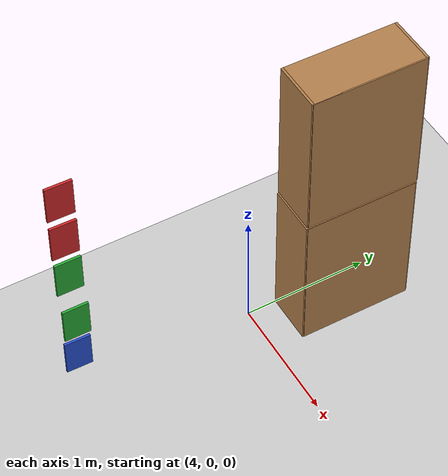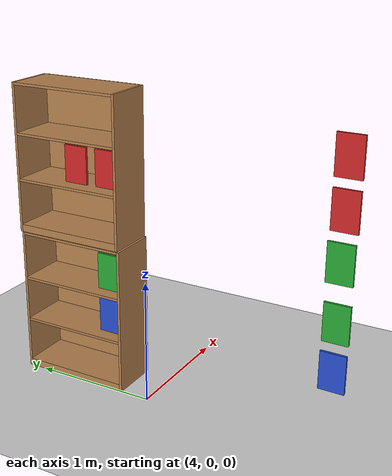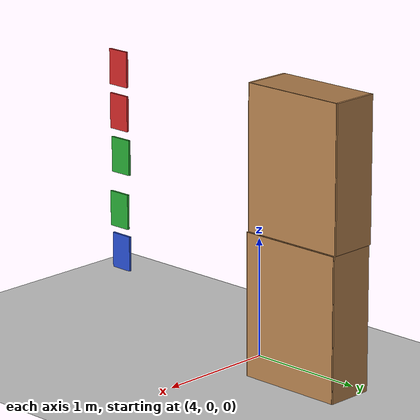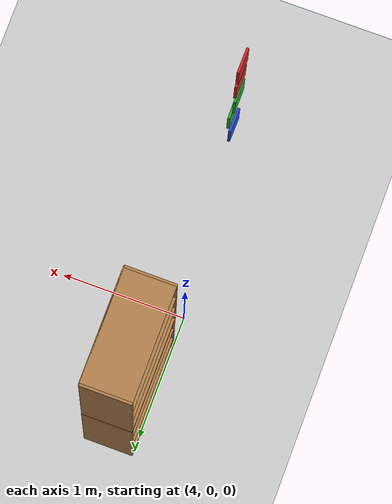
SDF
<sdf version="1.6">
 <world name="default">
  <model name="ground_plane">
   <static>1</static>
   <link name="link">
    <collision name="collision">
     <geometry><plane><normal>0 0 1</normal><size>100 100</size></plane></geometry>
     <surface><friction><ode><mu>100</mu><mu2>50</mu2></ode></friction></surface>
    </collision>
    <visual name="visual">
     <cast_shadows>0</cast_shadows>
     <geometry><plane><normal>0 0 1</normal><size>100 100</size></plane></geometry>
     <material>
      <script><uri>file://media/materials/scripts/gazebo.material</uri><name>Gazebo/Grey</name></script>
     </material>
    </visual>
   </link>
  </model>
  <model name="bookshelf_4_clone_1">
   <static>1</static>
   <link name="link">
    <inertial><mass>1</mass></inertial>
    <collision name="back">
     <pose>0 0.005 0.6 0 -0 0</pose>
     <geometry><box><size>0.9 0.01 1.2</size></box></geometry>
    </collision>
    <visual name="visual1">
     <pose>0 0.005 0.6 0 -0 0</pose>
     <geometry><box><size>0.9 0.01 1.2</size></box></geometry>
     <material>
      <script><uri>file://media/materials/scripts/gazebo.material</uri><name>Gazebo/Wood</name></script>
     </material>
    </visual>
    <collision name="left_side">
     <pose>0.45 -0.195 0.6 0 -0 0</pose>
     <geometry><box><size>0.02 0.4 1.2</size></box></geometry>
    </collision>
    <visual name="visual2">
     <pose>0.45 -0.195 0.6 0 -0 0</pose>
     <geometry><box><size>0.02 0.4 1.2</size></box></geometry>
     <material>
      <script><uri>file://media/materials/scripts/gazebo.material</uri><name>Gazebo/Wood</name></script>
     </material>
    </visual>
    <collision name="right_side">
     <pose>-0.45 -0.195 0.6 0 -0 0</pose>
     <geometry><box><size>0.02 0.4 1.2</size></box></geometry>
    </collision>
    <visual name="visual3">
     <pose>-0.45 -0.195 0.6 0 -0 0</pose>
     <geometry><box><size>0.02 0.4 1.2</size></box></geometry>
     <material>
      <script><uri>file://media/materials/scripts/gazebo.material</uri><name>Gazebo/Wood</name></script>
     </material>
    </visual>
    <collision name="bottom">
     <pose>0 -0.195 0.03 0 -0 0</pose>
     <geometry><box><size>0.88 0.4 0.06</size></box></geometry>
    </collision>
    <visual name="visual4">
     <pose>0 -0.195 0.03 0 -0 0</pose>
     <geometry><box><size>0.88 0.4 0.06</size></box></geometry>
     <material>
      <script><uri>file://media/materials/scripts/gazebo.material</uri><name>Gazebo/Wood</name></script>
     </material>
    </visual>
    <collision name="top">
     <pose>0 -0.195 1.19 0 -0 0</pose>
     <geometry><box><size>0.88 0.4 0.02</size></box></geometry>
    </collision>
    <visual name="visual5">
     <pose>0 -0.195 1.19 0 -0 0</pose>
     <geometry><box><size>0.88 0.4 0.02</size></box></geometry>
     <material>
      <script><uri>file://media/materials/scripts/gazebo.material</uri><name>Gazebo/Wood</name></script>
     </material>
    </visual>
    <collision name="low_shelf">
     <pose>0 -0.195 0.43 0 -0 0</pose>
     <geometry><box><size>0.88 0.4 0.02</size></box></geometry>
    </collision>
    <visual name="visual6">
     <pose>0 -0.195 0.43 0 -0 0</pose>
     <geometry><box><size>0.88 0.4 0.02</size></box></geometry>
     <material>
      <script><uri>file://media/materials/scripts/gazebo.material</uri><name>Gazebo/Wood</name></script>
     </material>
    </visual>
    <collision name="high_shelf">
     <pose>0 -0.195 0.8 0 -0 0</pose>
     <geometry><box><size>0.88 0.4 0.02</size></box></geometry>
    </collision>
    <visual name="visual7">
     <pose>0 -0.195 0.8 0 -0 0</pose>
     <geometry><box><size>0.88 0.4 0.02</size></box></geometry>
     <material>
      <script><uri>file://media/materials/scripts/gazebo.material</uri><name>Gazebo/Wood</name></script>
     </material>
    </visual>
   </link>
   <pose>4.39312 0.69592 0 0 0 -1.5727</pose>
  </model>
  <model name="bookshelf_4_clone_1_clone_clone_0">
   <static>1</static>
   <link name="link">
    <inertial><mass>1</mass></inertial>
    <collision name="back">
     <pose>0 0.005 0.6 0 -0 0</pose>
     <geometry><box><size>0.9 0.01 1.2</size></box></geometry>
    </collision>
    <visual name="visual1">
     <pose>0 0.005 0.6 0 -0 0</pose>
     <geometry><box><size>0.9 0.01 1.2</size></box></geometry>
     <material>
      <script><uri>file://media/materials/scripts/gazebo.material</uri><name>Gazebo/Wood</name></script>
     </material>
    </visual>
    <collision name="left_side">
     <pose>0.45 -0.195 0.6 0 -0 0</pose>
     <geometry><box><size>0.02 0.4 1.2</size></box></geometry>
    </collision>
    <visual name="visual2">
     <pose>0.45 -0.195 0.6 0 -0 0</pose>
     <geometry><box><size>0.02 0.4 1.2</size></box></geometry>
     <material>
      <script><uri>file://media/materials/scripts/gazebo.material</uri><name>Gazebo/Wood</name></script>
     </material>
    </visual>
    <collision name="right_side">
     <pose>-0.45 -0.195 0.6 0 -0 0</pose>
     <geometry><box><size>0.02 0.4 1.2</size></box></geometry>
    </collision>
    <visual name="visual3">
     <pose>-0.45 -0.195 0.6 0 -0 0</pose>
     <geometry><box><size>0.02 0.4 1.2</size></box></geometry>
     <material>
      <script><uri>file://media/materials/scripts/gazebo.material</uri><name>Gazebo/Wood</name></script>
     </material>
    </visual>
    <collision name="bottom">
     <pose>0 -0.195 0.03 0 -0 0</pose>
     <geometry><box><size>0.88 0.4 0.06</size></box></geometry>
    </collision>
    <visual name="visual4">
     <pose>0 -0.195 0.03 0 -0 0</pose>
     <geometry><box><size>0.88 0.4 0.06</size></box></geometry>
     <material>
      <script><uri>file://media/materials/scripts/gazebo.material</uri><name>Gazebo/Wood</name></script>
     </material>
    </visual>
    <collision name="top">
     <pose>0 -0.195 1.19 0 -0 0</pose>
     <geometry><box><size>0.88 0.4 0.02</size></box></geometry>
    </collision>
    <visual name="visual5">
     <pose>0 -0.195 1.19 0 -0 0</pose>
     <geometry><box><size>0.88 0.4 0.02</size></box></geometry>
     <material>
      <script><uri>file://media/materials/scripts/gazebo.material</uri><name>Gazebo/Wood</name></script>
     </material>
    </visual>
    <collision name="low_shelf">
     <pose>0 -0.195 0.43 0 -0 0</pose>
     <geometry><box><size>0.88 0.4 0.02</size></box></geometry>
    </collision>
    <visual name="visual6">
     <pose>0 -0.195 0.43 0 -0 0</pose>
     <geometry><box><size>0.88 0.4 0.02</size></box></geometry>
     <material>
      <script><uri>file://media/materials/scripts/gazebo.material</uri><name>Gazebo/Wood</name></script>
     </material>
    </visual>
    <collision name="high_shelf">
     <pose>0 -0.195 0.8 0 -0 0</pose>
     <geometry><box><size>0.88 0.4 0.02</size></box></geometry>
    </collision>
    <visual name="visual7">
     <pose>0 -0.195 0.8 0 -0 0</pose>
     <geometry><box><size>0.88 0.4 0.02</size></box></geometry>
     <material>
      <script><uri>file://media/materials/scripts/gazebo.material</uri><name>Gazebo/Wood</name></script>
     </material>
    </visual>
   </link>
   <pose>4.38615 0.705306 1.20741 0 0 -1.5727</pose>
  </model>
  <model name="bluecube_0_clone_clone_10_clone_clone_21_clone_clone_6">
   <static>1</static>
   <link name="link">
    <pose>0 0 0.21 0 -0 0</pose>
    <collision name="collision"><geometry><box><size>0.2 0.02 0.3</size></box></geometry></collision>
    <visual name="visual">
     <geometry><box><size>0.2 0.02 0.3</size></box></geometry>
     <material>
      <script><uri>file://media/materials/scripts/gazebo.material</uri><name>Gazebo/Blue</name></script>
     </material>
    </visual>
   </link>
   <pose>4.12204 0.403131 0.38097 0 -0 1.5507</pose>
  </model>
  <model name="bluecube_0_clone_clone_10_clone_clone_21_clone_clone_7">
   <static>1</static>
   <link name="link">
    <pose>0 0 0.21 0 -0 0</pose>
    <collision name="collision"><geometry><box><size>0.2 0.02 0.3</size></box></geometry></collision>
    <visual name="visual">
     <geometry><box><size>0.2 0.02 0.3</size></box></geometry>
     <material>
      <script><uri>file://media/materials/scripts/gazebo.material</uri><name>Gazebo/Blue</name></script>
     </material>
    </visual>
   </link>
   <pose>4.13062 -1.45389 0.38097 0 -0 1.5507</pose>
  </model>
  <model name="greencube_clone_clone_22_clone_clone_6">
   <static>1</static>
   <link name="link">
    <pose>0 0 0.21 0 -0 0</pose>
    <collision name="collision"><geometry><box><size>0.2 0.02 0.3</size></box></geometry></collision>
    <visual name="visual">
     <geometry><box><size>0.2 0.02 0.3</size></box></geometry>
     <material>
      <script><uri>file://media/materials/scripts/gazebo.material</uri><name>Gazebo/Green</name></script>
     </material>
    </visual>
   </link>
   <pose>4.1181 0.406165 0.751098 0 -0 1.56837</pose>
  </model>
  <model name="greencube_clone_clone_22_clone_clone_7">
   <static>1</static>
   <link name="link">
    <pose>0 0 0.21 0 -0 0</pose>
    <collision name="collision"><geometry><box><size>0.2 0.02 0.3</size></box></geometry></collision>
    <visual name="visual">
     <geometry><box><size>0.2 0.02 0.3</size></box></geometry>
     <material>
      <script><uri>file://media/materials/scripts/gazebo.material</uri><name>Gazebo/Green</name></script>
     </material>
    </visual>
   </link>
   <pose>4.15029 -1.45255 0.751098 0 -0 1.56837</pose>
  </model>
  <model name="greencube_clone_clone_22_clone_clone_10_clone_clone_clone_19">
   <static>1</static>
   <link name="link">
    <pose>0 0 0.21 0 -0 0</pose>
    <collision name="collision"><geometry><box><size>0.2 0.02 0.3</size></box></geometry></collision>
    <visual name="visual">
     <geometry><box><size>0.2 0.02 0.3</size></box></geometry>
     <material>
      <script><uri>file://media/materials/scripts/gazebo.material</uri><name>Gazebo/Green</name></script>
     </material>
    </visual>
   </link>
   <pose>4.1205 -1.46075 1.21098 0 -0 1.56837</pose>
  </model>
  <model name="redcube_clone_clone_22_clone_clone_17">
   <static>1</static>
   <link name="link">
    <pose>0 0 0.21 0 -0 0</pose>
    <collision name="collision"><geometry><box><size>0.2 0.02 0.3</size></box></geometry></collision>
    <visual name="visual">
     <geometry><box><size>0.2 0.02 0.3</size></box></geometry>
     <material>
      <script><uri>file://media/materials/scripts/gazebo.material</uri><name>Gazebo/Red</name></script>
     </material>
    </visual>
   </link>
   <pose>4.12444 0.68954 1.58534 0 -0 1.55372</pose>
  </model>
  <model name="redcube_clone_clone_22_clone_clone_18">
   <static>1</static>
   <link name="link">
    <pose>0 0 0.21 0 -0 0</pose>
    <collision name="collision"><geometry><box><size>0.2 0.02 0.3</size></box></geometry></collision>
    <visual name="visual">
     <geometry><box><size>0.2 0.02 0.3</size></box></geometry>
     <material>
      <script><uri>file://media/materials/scripts/gazebo.material</uri><name>Gazebo/Red</name></script>
     </material>
    </visual>
   </link>
   <pose>4.12958 0.415233 1.58534 0 -0 1.55372</pose>
  </model>
  <model name="redcube_clone_clone_22_clone_clone_19">
   <static>1</static>
   <link name="link">
    <pose>0 0 0.21 0 -0 0</pose>
    <collision name="collision"><geometry><box><size>0.2 0.02 0.3</size></box></geometry></collision>
    <visual name="visual">
     <geometry><box><size>0.2 0.02 0.3</size></box></geometry>
     <material>
      <script><uri>file://media/materials/scripts/gazebo.material</uri><name>Gazebo/Red</name></script>
     </material>
    </visual>
   </link>
   <pose>4.12545 -1.4697 1.58534 0 -0 1.55372</pose>
  </model>
  <model name="redcube_clone_clone_22_clone_clone_22_clone_clone">
   <static>1</static>
   <link name="link">
    <pose>0 0 0.21 0 -0 0</pose>
    <collision name="collision"><geometry><box><size>0.2 0.02 0.3</size></box></geometry></collision>
    <visual name="visual">
     <geometry><box><size>0.2 0.02 0.3</size></box></geometry>
     <material>
      <script><uri>file://media/materials/scripts/gazebo.material</uri><name>Gazebo/Red</name></script>
     </material>
    </visual>
   </link>
   <pose>4.12237 -1.47294 1.95914 0 -0 1.55372</pose>
  </model>
 </world>
</sdf>
